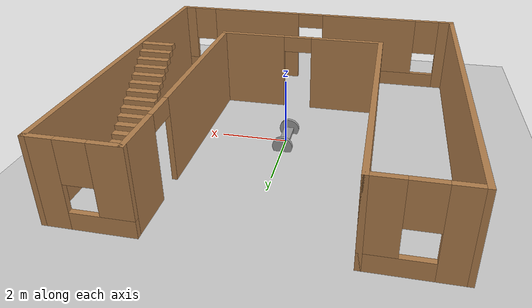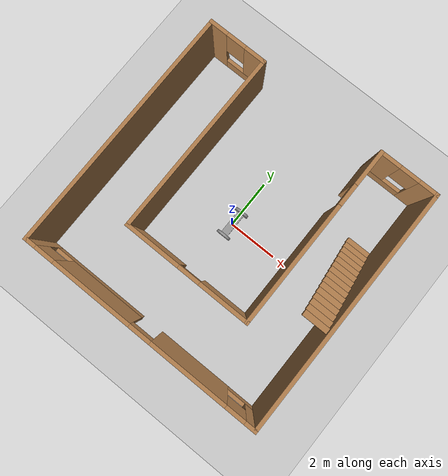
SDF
<?xml version="1.0"?>
<sdf version='1.6'>
  <world name='default'>

    <plugin name="hello" filename="libhello.so"/>

    <light name='sun' type='directional'>
      <cast_shadows>1</cast_shadows>
      <pose frame=''>0 0 10 0 -0 0</pose>
      <diffuse>0.8 0.8 0.8 1</diffuse>
      <specular>0.2 0.2 0.2 1</specular>
      <attenuation>
        <range>1000</range>
        <constant>0.9</constant>
        <linear>0.01</linear>
        <quadratic>0.001</quadratic>
      </attenuation>
      <direction>-0.5 0.1 -0.9</direction>
    </light>
    <model name='ground_plane'>
      <static>1</static>
      <link name='link'>
        <collision name='collision'>
          <geometry>
            <plane>
              <normal>0 0 1</normal>
              <size>100 100</size>
            </plane>
          </geometry>
          <surface>
            <friction>
              <ode>
                <mu>100</mu>
                <mu2>50</mu2>
              </ode>
              <torsional>
                <ode/>
              </torsional>
            </friction>
            <contact>
              <ode/>
            </contact>
            <bounce/>
          </surface>
          <max_contacts>10</max_contacts>
        </collision>
        <visual name='visual'>
          <cast_shadows>0</cast_shadows>
          <geometry>
            <plane>
              <normal>0 0 1</normal>
              <size>100 100</size>
            </plane>
          </geometry>
          <material>
            <script>
              <uri>file://media/materials/scripts/gazebo.material</uri>
              <name>Gazebo/Grey</name>
            </script>
          </material>
        </visual>
        <self_collide>0</self_collide>
        <enable_wind>0</enable_wind>
        <kinematic>0</kinematic>
      </link>
    </model>
    <gravity>0 0 -9.8</gravity>
    <magnetic_field>6e-06 2.3e-05 -4.2e-05</magnetic_field>
    <atmosphere type='adiabatic'/>
    <physics name='default_physics' default='0' type='ode'>
      <max_step_size>0.001</max_step_size>
      <real_time_factor>1</real_time_factor>
      <real_time_update_rate>1000</real_time_update_rate>
    </physics>
    <scene>
      <ambient>0.4 0.4 0.4 1</ambient>
      <background>0.7 0.7 0.7 1</background>
      <shadows>1</shadows>
    </scene>
    <wind/>
    <spherical_coordinates>
      <surface_model>EARTH_WGS84</surface_model>
      <latitude_deg>0</latitude_deg>
      <longitude_deg>0</longitude_deg>
      <elevation>0</elevation>
      <heading_deg>0</heading_deg>
    </spherical_coordinates>

    <include>
      <static>false</static>
      <uri>model://robot</uri>
      <pose> 0 0 0.15 0 0 0</pose>
    </include>

    <include>
      <uri>model://building</uri>
      <pose> 0 0 0 0 0 0</pose>
      <static>true</static>
    </include>

    <gui fullscreen='0'>
      <camera name='user_camera'>
        <pose frame=''>5.34079 1.64894 3.88586 0 0.503643 -3.07099</pose>
        <view_controller>orbit</view_controller>
        <projection_type>perspective</projection_type>
      </camera>
    </gui>
  </world>
</sdf>

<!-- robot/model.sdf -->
<sdf version='1.6'>
  <model name='robot'>
    <link name='link_0'>
      <inertial>
        <mass>1</mass>
        <inertia>
          <ixx>0.166667</ixx>
          <ixy>0</ixy>
          <ixz>0</ixz>
          <iyy>0.166667</iyy>
          <iyz>0</iyz>
          <izz>0.166667</izz>
        </inertia>
        <pose frame=''>0 0 0 0 -0 0</pose>
      </inertial>
      <pose frame=''>0 0 0 0 -0 0</pose>
      <gravity>1</gravity>
      <self_collide>0</self_collide>
      <kinematic>0</kinematic>
      <enable_wind>0</enable_wind>
      <visual name='visual'>
        <pose frame=''>0 0 0 0 -0 0</pose>
        <geometry>
          <box>
            <size>0.3 1 0.1</size>
          </box>
        </geometry>
        <material>
          <lighting>1</lighting>
          <script>
            <uri>file://media/materials/scripts/gazebo.material</uri>
            <name>Gazebo/Grey</name>
          </script>
          <shader type='pixel'>
            <normal_map>__default__</normal_map>
          </shader>
          <ambient>0.3 0.3 0.3 1</ambient>
          <diffuse>0.7 0.7 0.7 1</diffuse>
          <specular>0.01 0.01 0.01 1</specular>
          <emissive>0 0 0 1</emissive>
        </material>
        <transparency>0</transparency>
        <cast_shadows>1</cast_shadows>
      </visual>
      <collision name='collision'>
        <laser_retro>0</laser_retro>
        <max_contacts>10</max_contacts>
        <pose frame=''>0 0 0 0 -0 0</pose>
        <geometry>
          <box>
            <size>0.3 1 0.1</size>
          </box>
        </geometry>
        <surface>
          <friction>
            <ode>
              <mu>1</mu>
              <mu2>1</mu2>
              <fdir1>0 0 0</fdir1>
              <slip1>0</slip1>
              <slip2>0</slip2>
            </ode>
            <torsional>
              <coefficient>1</coefficient>
              <patch_radius>0</patch_radius>
              <surface_radius>0</surface_radius>
              <use_patch_radius>1</use_patch_radius>
              <ode>
                <slip>0</slip>
              </ode>
            </torsional>
          </friction>
          <bounce>
            <restitution_coefficient>0</restitution_coefficient>
            <threshold>1e+06</threshold>
          </bounce>
          <contact>
            <collide_without_contact>0</collide_without_contact>
            <collide_without_contact_bitmask>1</collide_without_contact_bitmask>
            <collide_bitmask>1</collide_bitmask>
            <ode>
              <soft_cfm>0</soft_cfm>
              <soft_erp>0.2</soft_erp>
              <kp>1e+13</kp>
              <kd>1</kd>
              <max_vel>0.01</max_vel>
              <min_depth>0</min_depth>
            </ode>
            <bullet>
              <split_impulse>1</split_impulse>
              <split_impulse_penetration_threshold>-0.01</split_impulse_penetration_threshold>
              <soft_cfm>0</soft_cfm>
              <soft_erp>0.2</soft_erp>
              <kp>1e+13</kp>
              <kd>1</kd>
            </bullet>
          </contact>
        </surface>
      </collision>
    </link>
    <link name='link_1'>
      <inertial>
        <mass>1</mass>
        <inertia>
          <ixx>0.145833</ixx>
          <ixy>0</ixy>
          <ixz>0</ixz>
          <iyy>0.145833</iyy>
          <iyz>0</iyz>
          <izz>0.125</izz>
        </inertia>
        <pose frame=''>0 0 0 0 -0 0</pose>
      </inertial>
      <pose frame=''>0 -0.550029 0 1.5707 -0 0</pose>
      <gravity>1</gravity>
      <self_collide>0</self_collide>
      <kinematic>0</kinematic>
      <enable_wind>0</enable_wind>
      <visual name='visual'>
        <pose frame=''>0 0 0 0 -0 0</pose>
        <geometry>
          <cylinder>
            <radius>0.3</radius>
            <length>0.1</length>
          </cylinder>
        </geometry>
        <material>
          <lighting>1</lighting>
          <script>
            <uri>file://media/materials/scripts/gazebo.material</uri>
            <name>Gazebo/Grey</name>
          </script>
          <shader type='pixel'>
            <normal_map>__default__</normal_map>
          </shader>
          <ambient>0.3 0.3 0.3 1</ambient>
          <diffuse>0.7 0.7 0.7 1</diffuse>
          <specular>0.01 0.01 0.01 1</specular>
          <emissive>0 0 0 1</emissive>
        </material>
        <transparency>0</transparency>
        <cast_shadows>1</cast_shadows>
      </visual>
      <collision name='collision'>
        <laser_retro>0</laser_retro>
        <max_contacts>10</max_contacts>
        <pose frame=''>0 0 0 0 -0 0</pose>
        <geometry>
          <cylinder>
            <radius>0.3</radius>
            <length>0.1</length>
          </cylinder>
        </geometry>
        <surface>
          <friction>
            <ode>
              <mu>1</mu>
              <mu2>1</mu2>
              <fdir1>0 0 0</fdir1>
              <slip1>0</slip1>
              <slip2>0</slip2>
            </ode>
            <torsional>
              <coefficient>1</coefficient>
              <patch_radius>0</patch_radius>
              <surface_radius>0</surface_radius>
              <use_patch_radius>1</use_patch_radius>
              <ode>
                <slip>0</slip>
              </ode>
            </torsional>
          </friction>
          <bounce>
            <restitution_coefficient>0</restitution_coefficient>
            <threshold>1e+06</threshold>
          </bounce>
          <contact>
            <collide_without_contact>0</collide_without_contact>
            <collide_without_contact_bitmask>1</collide_without_contact_bitmask>
            <collide_bitmask>1</collide_bitmask>
            <ode>
              <soft_cfm>0</soft_cfm>
              <soft_erp>0.2</soft_erp>
              <kp>1e+13</kp>
              <kd>1</kd>
              <max_vel>0.01</max_vel>
              <min_depth>0</min_depth>
            </ode>
            <bullet>
              <split_impulse>1</split_impulse>
              <split_impulse_penetration_threshold>-0.01</split_impulse_penetration_threshold>
              <soft_cfm>0</soft_cfm>
              <soft_erp>0.2</soft_erp>
              <kp>1e+13</kp>
              <kd>1</kd>
            </bullet>
          </contact>
        </surface>
      </collision>
    </link>
    <link name='link_1_clone'>
      <inertial>
        <mass>1</mass>
        <inertia>
          <ixx>0.145833</ixx>
          <ixy>0</ixy>
          <ixz>0</ixz>
          <iyy>0.145833</iyy>
          <iyz>0</iyz>
          <izz>0.125</izz>
        </inertia>
        <pose frame=''>0 0 0 0 -0 0</pose>
      </inertial>
      <pose frame=''>0 0.550029 0 1.5707 -0 0</pose>
      <gravity>1</gravity>
      <self_collide>0</self_collide>
      <kinematic>0</kinematic>
      <enable_wind>0</enable_wind>
      <visual name='visual'>
        <pose frame=''>0 0 0 0 -0 0</pose>
        <geometry>
          <cylinder>
            <radius>0.3</radius>
            <length>0.1</length>
          </cylinder>
        </geometry>
        <material>
          <lighting>1</lighting>
          <script>
            <uri>file://media/materials/scripts/gazebo.material</uri>
            <name>Gazebo/Grey</name>
          </script>
          <shader type='pixel'>
            <normal_map>__default__</normal_map>
          </shader>
          <ambient>0.3 0.3 0.3 1</ambient>
          <diffuse>0.7 0.7 0.7 1</diffuse>
          <specular>0.01 0.01 0.01 1</specular>
          <emissive>0 0 0 1</emissive>
        </material>
        <transparency>0</transparency>
        <cast_shadows>1</cast_shadows>
      </visual>
      <collision name='collision'>
        <laser_retro>0</laser_retro>
        <max_contacts>10</max_contacts>
        <pose frame=''>0 0 0 0 -0 0</pose>
        <geometry>
          <cylinder>
            <radius>0.3</radius>
            <length>0.1</length>
          </cylinder>
        </geometry>
        <surface>
          <friction>
            <ode>
              <mu>1</mu>
              <mu2>1</mu2>
              <fdir1>0 0 0</fdir1>
              <slip1>0</slip1>
              <slip2>0</slip2>
            </ode>
            <torsional>
              <coefficient>1</coefficient>
              <patch_radius>0</patch_radius>
              <surface_radius>0</surface_radius>
              <use_patch_radius>1</use_patch_radius>
              <ode>
                <slip>0</slip>
              </ode>
            </torsional>
          </friction>
          <bounce>
            <restitution_coefficient>0</restitution_coefficient>
            <threshold>1e+06</threshold>
          </bounce>
          <contact>
            <collide_without_contact>0</collide_without_contact>
            <collide_without_contact_bitmask>1</collide_without_contact_bitmask>
            <collide_bitmask>1</collide_bitmask>
            <ode>
              <soft_cfm>0</soft_cfm>
              <soft_erp>0.2</soft_erp>
              <kp>1e+13</kp>
              <kd>1</kd>
              <max_vel>0.01</max_vel>
              <min_depth>0</min_depth>
            </ode>
            <bullet>
              <split_impulse>1</split_impulse>
              <split_impulse_penetration_threshold>-0.01</split_impulse_penetration_threshold>
              <soft_cfm>0</soft_cfm>
              <soft_erp>0.2</soft_erp>
              <kp>1e+13</kp>
              <kd>1</kd>
            </bullet>
          </contact>
        </surface>
      </collision>
    </link>
    <joint name='link_0_JOINT_0' type='revolute'>
      <parent>link_0</parent>
      <child>link_1</child>
      <pose frame=''>0 0 0 0 -0 0</pose>
      <axis>
        <xyz>0 0 1</xyz>
        <use_parent_model_frame>0</use_parent_model_frame>
        <limit>
          <lower>-1.79769e+308</lower>
          <upper>1.79769e+308</upper>
          <effort>-1</effort>
          <velocity>-1</velocity>
        </limit>
        <dynamics>
          <spring_reference>0</spring_reference>
          <spring_stiffness>0</spring_stiffness>
          <damping>0</damping>
        </dynamics>
      </axis>
      <physics>
        <ode>
          <limit>
            <cfm>0</cfm>
            <erp>0.2</erp>
          </limit>
          <suspension>
            <cfm>0</cfm>
            <erp>0.2</erp>
          </suspension>
        </ode>
      </physics>
    </joint>
    <joint name='link_0_JOINT_1' type='revolute'>
      <parent>link_0</parent>
      <child>link_1_clone</child>
      <pose frame=''>0 0 0 0 -0 0</pose>
      <axis>
        <xyz>0 0 1</xyz>
        <use_parent_model_frame>0</use_parent_model_frame>
        <limit>
          <lower>-1.79769e+308</lower>
          <upper>1.79769e+308</upper>
          <effort>-1</effort>
          <velocity>-1</velocity>
        </limit>
        <dynamics>
          <spring_reference>0</spring_reference>
          <spring_stiffness>0</spring_stiffness>
          <damping>0</damping>
        </dynamics>
      </axis>
      <physics>
        <ode>
          <limit>
            <cfm>0</cfm>
            <erp>0.2</erp>
          </limit>
          <suspension>
            <cfm>0</cfm>
            <erp>0.2</erp>
          </suspension>
        </ode>
      </physics>
    </joint>
    <static>0</static>
    <allow_auto_disable>1</allow_auto_disable>
  </model>
</sdf>

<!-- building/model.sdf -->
<sdf version='1.6'>
  <model name='building'>
    <pose frame=''>-0.417172 1.40474 0 0 -0 0</pose>
    <link name='Stairs_0'>
      <visual name='Stairs_0_Visual_0'>
        <pose frame=''>4.31792 2.29229 0.083333 0 -0 0</pose>
        <geometry>
          <box>
            <size>1 0.233333 0.166667</size>
          </box>
        </geometry>
        <material>
          <script>
            <uri>file://media/materials/scripts/gazebo.material</uri>
            <name>Gazebo/Wood</name>
          </script>
          <ambient>1 1 1 1</ambient>
        </material>
        <meta>
          <layer>0</layer>
        </meta>
      </visual>
      <collision name='Stairs_0_Collision_0'>
        <geometry>
          <box>
            <size>1 0.233333 0.166667</size>
          </box>
        </geometry>
        <pose frame=''>4.31792 2.29229 0.083333 0 -0 0</pose>
      </collision>
      <visual name='Stairs_0_Visual_1'>
        <pose frame=''>4.31792 2.05896 0.25 0 -0 0</pose>
        <geometry>
          <box>
            <size>1 0.233333 0.166667</size>
          </box>
        </geometry>
        <material>
          <script>
            <uri>file://media/materials/scripts/gazebo.material</uri>
            <name>Gazebo/Wood</name>
          </script>
          <ambient>1 1 1 1</ambient>
        </material>
        <meta>
          <layer>0</layer>
        </meta>
      </visual>
      <collision name='Stairs_0_Collision_1'>
        <geometry>
          <box>
            <size>1 0.233333 0.166667</size>
          </box>
        </geometry>
        <pose frame=''>4.31792 2.05896 0.25 0 -0 0</pose>
      </collision>
      <visual name='Stairs_0_Visual_2'>
        <pose frame=''>4.31792 1.82563 0.416667 0 -0 0</pose>
        <geometry>
          <box>
            <size>1 0.233333 0.166667</size>
          </box>
        </geometry>
        <material>
          <script>
            <uri>file://media/materials/scripts/gazebo.material</uri>
            <name>Gazebo/Wood</name>
          </script>
          <ambient>1 1 1 1</ambient>
        </material>
        <meta>
          <layer>0</layer>
        </meta>
      </visual>
      <collision name='Stairs_0_Collision_2'>
        <geometry>
          <box>
            <size>1 0.233333 0.166667</size>
          </box>
        </geometry>
        <pose frame=''>4.31792 1.82563 0.416667 0 -0 0</pose>
      </collision>
      <visual name='Stairs_0_Visual_3'>
        <pose frame=''>4.31792 1.59229 0.583333 0 -0 0</pose>
        <geometry>
          <box>
            <size>1 0.233333 0.166667</size>
          </box>
        </geometry>
        <material>
          <script>
            <uri>file://media/materials/scripts/gazebo.material</uri>
            <name>Gazebo/Wood</name>
          </script>
          <ambient>1 1 1 1</ambient>
        </material>
        <meta>
          <layer>0</layer>
        </meta>
      </visual>
      <collision name='Stairs_0_Collision_3'>
        <geometry>
          <box>
            <size>1 0.233333 0.166667</size>
          </box>
        </geometry>
        <pose frame=''>4.31792 1.59229 0.583333 0 -0 0</pose>
      </collision>
      <visual name='Stairs_0_Visual_4'>
        <pose frame=''>4.31792 1.35896 0.75 0 -0 0</pose>
        <geometry>
          <box>
            <size>1 0.233333 0.166667</size>
          </box>
        </geometry>
        <material>
          <script>
            <uri>file://media/materials/scripts/gazebo.material</uri>
            <name>Gazebo/Wood</name>
          </script>
          <ambient>1 1 1 1</ambient>
        </material>
        <meta>
          <layer>0</layer>
        </meta>
      </visual>
      <collision name='Stairs_0_Collision_4'>
        <geometry>
          <box>
            <size>1 0.233333 0.166667</size>
          </box>
        </geometry>
        <pose frame=''>4.31792 1.35896 0.75 0 -0 0</pose>
      </collision>
      <visual name='Stairs_0_Visual_5'>
        <pose frame=''>4.31792 1.12563 0.916667 0 -0 0</pose>
        <geometry>
          <box>
            <size>1 0.233333 0.166667</size>
          </box>
        </geometry>
        <material>
          <script>
            <uri>file://media/materials/scripts/gazebo.material</uri>
            <name>Gazebo/Wood</name>
          </script>
          <ambient>1 1 1 1</ambient>
        </material>
        <meta>
          <layer>0</layer>
        </meta>
      </visual>
      <collision name='Stairs_0_Collision_5'>
        <geometry>
          <box>
            <size>1 0.233333 0.166667</size>
          </box>
        </geometry>
        <pose frame=''>4.31792 1.12563 0.916667 0 -0 0</pose>
      </collision>
      <visual name='Stairs_0_Visual_6'>
        <pose frame=''>4.31792 0.892293 1.08333 0 -0 0</pose>
        <geometry>
          <box>
            <size>1 0.233333 0.166667</size>
          </box>
        </geometry>
        <material>
          <script>
            <uri>file://media/materials/scripts/gazebo.material</uri>
            <name>Gazebo/Wood</name>
          </script>
          <ambient>1 1 1 1</ambient>
        </material>
        <meta>
          <layer>0</layer>
        </meta>
      </visual>
      <collision name='Stairs_0_Collision_6'>
        <geometry>
          <box>
            <size>1 0.233333 0.166667</size>
          </box>
        </geometry>
        <pose frame=''>4.31792 0.892293 1.08333 0 -0 0</pose>
      </collision>
      <visual name='Stairs_0_Visual_7'>
        <pose frame=''>4.31792 0.658959 1.25 0 -0 0</pose>
        <geometry>
          <box>
            <size>1 0.233333 0.166667</size>
          </box>
        </geometry>
        <material>
          <script>
            <uri>file://media/materials/scripts/gazebo.material</uri>
            <name>Gazebo/Wood</name>
          </script>
          <ambient>1 1 1 1</ambient>
        </material>
        <meta>
          <layer>0</layer>
        </meta>
      </visual>
      <collision name='Stairs_0_Collision_7'>
        <geometry>
          <box>
            <size>1 0.233333 0.166667</size>
          </box>
        </geometry>
        <pose frame=''>4.31792 0.658959 1.25 0 -0 0</pose>
      </collision>
      <visual name='Stairs_0_Visual_8'>
        <pose frame=''>4.31792 0.425626 1.41667 0 -0 0</pose>
        <geometry>
          <box>
            <size>1 0.233333 0.166667</size>
          </box>
        </geometry>
        <material>
          <script>
            <uri>file://media/materials/scripts/gazebo.material</uri>
            <name>Gazebo/Wood</name>
          </script>
          <ambient>1 1 1 1</ambient>
        </material>
        <meta>
          <layer>0</layer>
        </meta>
      </visual>
      <collision name='Stairs_0_Collision_8'>
        <geometry>
          <box>
            <size>1 0.233333 0.166667</size>
          </box>
        </geometry>
        <pose frame=''>4.31792 0.425626 1.41667 0 -0 0</pose>
      </collision>
      <visual name='Stairs_0_Visual_9'>
        <pose frame=''>4.31792 0.192293 1.58333 0 -0 0</pose>
        <geometry>
          <box>
            <size>1 0.233333 0.166667</size>
          </box>
        </geometry>
        <material>
          <script>
            <uri>file://media/materials/scripts/gazebo.material</uri>
            <name>Gazebo/Wood</name>
          </script>
          <ambient>1 1 1 1</ambient>
        </material>
        <meta>
          <layer>0</layer>
        </meta>
      </visual>
      <collision name='Stairs_0_Collision_9'>
        <geometry>
          <box>
            <size>1 0.233333 0.166667</size>
          </box>
        </geometry>
        <pose frame=''>4.31792 0.192293 1.58333 0 -0 0</pose>
      </collision>
      <visual name='Stairs_0_Visual_10'>
        <pose frame=''>4.31792 -0.041041 1.75 0 -0 0</pose>
        <geometry>
          <box>
            <size>1 0.233333 0.166667</size>
          </box>
        </geometry>
        <material>
          <script>
            <uri>file://media/materials/scripts/gazebo.material</uri>
            <name>Gazebo/Wood</name>
          </script>
          <ambient>1 1 1 1</ambient>
        </material>
        <meta>
          <layer>0</layer>
        </meta>
      </visual>
      <collision name='Stairs_0_Collision_10'>
        <geometry>
          <box>
            <size>1 0.233333 0.166667</size>
          </box>
        </geometry>
        <pose frame=''>4.31792 -0.041041 1.75 0 -0 0</pose>
      </collision>
      <visual name='Stairs_0_Visual_11'>
        <pose frame=''>4.31792 -0.274374 1.91667 0 -0 0</pose>
        <geometry>
          <box>
            <size>1 0.233333 0.166667</size>
          </box>
        </geometry>
        <material>
          <script>
            <uri>file://media/materials/scripts/gazebo.material</uri>
            <name>Gazebo/Wood</name>
          </script>
          <ambient>1 1 1 1</ambient>
        </material>
        <meta>
          <layer>0</layer>
        </meta>
      </visual>
      <collision name='Stairs_0_Collision_11'>
        <geometry>
          <box>
            <size>1 0.233333 0.166667</size>
          </box>
        </geometry>
        <pose frame=''>4.31792 -0.274374 1.91667 0 -0 0</pose>
      </collision>
      <visual name='Stairs_0_Visual_12'>
        <pose frame=''>4.31792 -0.507707 2.08333 0 -0 0</pose>
        <geometry>
          <box>
            <size>1 0.233333 0.166667</size>
          </box>
        </geometry>
        <material>
          <script>
            <uri>file://media/materials/scripts/gazebo.material</uri>
            <name>Gazebo/Wood</name>
          </script>
          <ambient>1 1 1 1</ambient>
        </material>
        <meta>
          <layer>0</layer>
        </meta>
      </visual>
      <collision name='Stairs_0_Collision_12'>
        <geometry>
          <box>
            <size>1 0.233333 0.166667</size>
          </box>
        </geometry>
        <pose frame=''>4.31792 -0.507707 2.08333 0 -0 0</pose>
      </collision>
      <visual name='Stairs_0_Visual_13'>
        <pose frame=''>4.31792 -0.741041 2.25 0 -0 0</pose>
        <geometry>
          <box>
            <size>1 0.233333 0.166667</size>
          </box>
        </geometry>
        <material>
          <script>
            <uri>file://media/materials/scripts/gazebo.material</uri>
            <name>Gazebo/Wood</name>
          </script>
          <ambient>1 1 1 1</ambient>
        </material>
        <meta>
          <layer>0</layer>
        </meta>
      </visual>
      <collision name='Stairs_0_Collision_13'>
        <geometry>
          <box>
            <size>1 0.233333 0.166667</size>
          </box>
        </geometry>
        <pose frame=''>4.31792 -0.741041 2.25 0 -0 0</pose>
      </collision>
      <visual name='Stairs_0_Visual_14'>
        <pose frame=''>4.31792 -0.974374 2.41667 0 -0 0</pose>
        <geometry>
          <box>
            <size>1 0.233333 0.166667</size>
          </box>
        </geometry>
        <material>
          <script>
            <uri>file://media/materials/scripts/gazebo.material</uri>
            <name>Gazebo/Wood</name>
          </script>
          <ambient>1 1 1 1</ambient>
        </material>
        <meta>
          <layer>0</layer>
        </meta>
      </visual>
      <collision name='Stairs_0_Collision_14'>
        <geometry>
          <box>
            <size>1 0.233333 0.166667</size>
          </box>
        </geometry>
        <pose frame=''>4.31792 -0.974374 2.41667 0 -0 0</pose>
      </collision>
    </link>
    <link name='Wall_11'>
      <collision name='Wall_11_Collision'>
        <geometry>
          <box>
            <size>10 0.15 2.5</size>
          </box>
        </geometry>
        <pose frame=''>0 0 1.25 0 -0 0</pose>
      </collision>
      <visual name='Wall_11_Visual'>
        <pose frame=''>0 0 1.25 0 -0 0</pose>
        <geometry>
          <box>
            <size>10 0.15 2.5</size>
          </box>
        </geometry>
        <material>
          <script>
            <uri>file://media/materials/scripts/gazebo.material</uri>
            <name>Gazebo/Wood</name>
          </script>
          <ambient>1 1 1 1</ambient>
        </material>
        <meta>
          <layer>0</layer>
        </meta>
      </visual>
      <pose frame=''>-4.925 0 0 0 -0 -1.5708</pose>
    </link>
    <link name='Wall_12'>
      <pose frame=''>0 -4.925 0 0 -0 0</pose>
      <visual name='Wall_12_Visual_0'>
        <pose frame=''>-4.74975 0 1.25 0 -0 0</pose>
        <geometry>
          <box>
            <size>0.500495 0.15 2.5</size>
          </box>
        </geometry>
        <material>
          <script>
            <uri>file://media/materials/scripts/gazebo.material</uri>
            <name>Gazebo/Wood</name>
          </script>
          <ambient>1 1 1 1</ambient>
        </material>
        <meta>
          <layer>0</layer>
        </meta>
      </visual>
      <collision name='Wall_12_Collision_0'>
        <geometry>
          <box>
            <size>0.500495 0.15 2.5</size>
          </box>
        </geometry>
        <pose frame=''>-4.74975 0 1.25 0 -0 0</pose>
      </collision>
      <visual name='Wall_12_Visual_1'>
        <pose frame=''>2.10412 0 1.25 0 -0 0</pose>
        <geometry>
          <box>
            <size>3.19015 0.15 2.5</size>
          </box>
        </geometry>
        <material>
          <script>
            <uri>file://media/materials/scripts/gazebo.material</uri>
            <name>Gazebo/Wood</name>
          </script>
          <ambient>1 1 1 1</ambient>
        </material>
        <meta>
          <layer>0</layer>
        </meta>
      </visual>
      <collision name='Wall_12_Collision_1'>
        <geometry>
          <box>
            <size>3.19015 0.15 2.5</size>
          </box>
        </geometry>
        <pose frame=''>2.10412 0 1.25 0 -0 0</pose>
      </collision>
      <visual name='Wall_12_Visual_2'>
        <pose frame=''>-2.44523 0 0.25 0 -0 0</pose>
        <geometry>
          <box>
            <size>4.10854 0.15 0.5</size>
          </box>
        </geometry>
        <material>
          <script>
            <uri>file://media/materials/scripts/gazebo.material</uri>
            <name>Gazebo/Wood</name>
          </script>
          <ambient>1 1 1 1</ambient>
        </material>
        <meta>
          <layer>0</layer>
        </meta>
      </visual>
      <collision name='Wall_12_Collision_2'>
        <geometry>
          <box>
            <size>4.10854 0.15 0.5</size>
          </box>
        </geometry>
        <pose frame=''>-2.44523 0 0.25 0 -0 0</pose>
      </collision>
      <visual name='Wall_12_Visual_3'>
        <pose frame=''>4.3496 0 0.25 0 -0 0</pose>
        <geometry>
          <box>
            <size>1.30081 0.15 0.5</size>
          </box>
        </geometry>
        <material>
          <script>
            <uri>file://media/materials/scripts/gazebo.material</uri>
            <name>Gazebo/Wood</name>
          </script>
          <ambient>1 1 1 1</ambient>
        </material>
        <meta>
          <layer>0</layer>
        </meta>
      </visual>
      <collision name='Wall_12_Collision_3'>
        <geometry>
          <box>
            <size>1.30081 0.15 0.5</size>
          </box>
        </geometry>
        <pose frame=''>4.3496 0 0.25 0 -0 0</pose>
      </collision>
      <visual name='Wall_12_Visual_4'>
        <pose frame=''>-2.04523 0 1.5 0 -0 0</pose>
        <geometry>
          <box>
            <size>3.30854 0.15 2</size>
          </box>
        </geometry>
        <material>
          <script>
            <uri>file://media/materials/scripts/gazebo.material</uri>
            <name>Gazebo/Wood</name>
          </script>
          <ambient>1 1 1 1</ambient>
        </material>
        <meta>
          <layer>0</layer>
        </meta>
      </visual>
      <collision name='Wall_12_Collision_4'>
        <geometry>
          <box>
            <size>3.30854 0.15 2</size>
          </box>
        </geometry>
        <pose frame=''>-2.04523 0 1.5 0 -0 0</pose>
      </collision>
      <visual name='Wall_12_Visual_5'>
        <pose frame=''>-2.04523 0 1.5 0 -0 0</pose>
        <geometry>
          <box>
            <size>3.30854 0.15 2</size>
          </box>
        </geometry>
        <material>
          <script>
            <uri>file://media/materials/scripts/gazebo.material</uri>
            <name>Gazebo/Wood</name>
          </script>
          <ambient>1 1 1 1</ambient>
        </material>
        <meta>
          <layer>0</layer>
        </meta>
      </visual>
      <collision name='Wall_12_Collision_5'>
        <geometry>
          <box>
            <size>3.30854 0.15 2</size>
          </box>
        </geometry>
        <pose frame=''>-2.04523 0 1.5 0 -0 0</pose>
      </collision>
      <visual name='Wall_12_Visual_6'>
        <pose frame=''>4.7496 0 1.5 0 -0 0</pose>
        <geometry>
          <box>
            <size>0.500808 0.15 2</size>
          </box>
        </geometry>
        <material>
          <script>
            <uri>file://media/materials/scripts/gazebo.material</uri>
            <name>Gazebo/Wood</name>
          </script>
          <ambient>1 1 1 1</ambient>
        </material>
        <meta>
          <layer>0</layer>
        </meta>
      </visual>
      <collision name='Wall_12_Collision_6'>
        <geometry>
          <box>
            <size>0.500808 0.15 2</size>
          </box>
        </geometry>
        <pose frame=''>4.7496 0 1.5 0 -0 0</pose>
      </collision>
      <visual name='Wall_12_Visual_7'>
        <pose frame=''>-4.0995 0 1.9 0 -0 0</pose>
        <geometry>
          <box>
            <size>0.8 0.15 1.2</size>
          </box>
        </geometry>
        <material>
          <script>
            <uri>file://media/materials/scripts/gazebo.material</uri>
            <name>Gazebo/Wood</name>
          </script>
          <ambient>1 1 1 1</ambient>
        </material>
        <meta>
          <layer>0</layer>
        </meta>
      </visual>
      <collision name='Wall_12_Collision_7'>
        <geometry>
          <box>
            <size>0.8 0.15 1.2</size>
          </box>
        </geometry>
        <pose frame=''>-4.0995 0 1.9 0 -0 0</pose>
      </collision>
      <visual name='Wall_12_Visual_8'>
        <pose frame=''>4.09919 0 1.9 0 -0 0</pose>
        <geometry>
          <box>
            <size>0.8 0.15 1.2</size>
          </box>
        </geometry>
        <material>
          <script>
            <uri>file://media/materials/scripts/gazebo.material</uri>
            <name>Gazebo/Wood</name>
          </script>
          <ambient>1 1 1 1</ambient>
        </material>
        <meta>
          <layer>0</layer>
        </meta>
      </visual>
      <collision name='Wall_12_Collision_8'>
        <geometry>
          <box>
            <size>0.8 0.15 1.2</size>
          </box>
        </geometry>
        <pose frame=''>4.09919 0 1.9 0 -0 0</pose>
      </collision>
      <visual name='Wall_12_Visual_9'>
        <pose frame=''>0.059039 0 2.25 0 -0 0</pose>
        <geometry>
          <box>
            <size>0.9 0.15 0.5</size>
          </box>
        </geometry>
        <material>
          <script>
            <uri>file://media/materials/scripts/gazebo.material</uri>
            <name>Gazebo/Wood</name>
          </script>
          <ambient>1 1 1 1</ambient>
        </material>
        <meta>
          <layer>0</layer>
        </meta>
      </visual>
      <collision name='Wall_12_Collision_9'>
        <geometry>
          <box>
            <size>0.9 0.15 0.5</size>
          </box>
        </geometry>
        <pose frame=''>0.059039 0 2.25 0 -0 0</pose>
      </collision>
      <visual name='Wall_12_Visual_10'>
        <pose frame=''>0.059039 0 2.25 0 -0 0</pose>
        <geometry>
          <box>
            <size>0.9 0.15 0.5</size>
          </box>
        </geometry>
        <material>
          <script>
            <uri>file://media/materials/scripts/gazebo.material</uri>
            <name>Gazebo/Wood</name>
          </script>
          <ambient>1 1 1 1</ambient>
        </material>
        <meta>
          <layer>0</layer>
        </meta>
      </visual>
      <collision name='Wall_12_Collision_10'>
        <geometry>
          <box>
            <size>0.9 0.15 0.5</size>
          </box>
        </geometry>
        <pose frame=''>0.059039 0 2.25 0 -0 0</pose>
      </collision>
    </link>
    <link name='Wall_13'>
      <collision name='Wall_13_Collision'>
        <geometry>
          <box>
            <size>10 0.15 2.5</size>
          </box>
        </geometry>
        <pose frame=''>0 0 1.25 0 -0 0</pose>
      </collision>
      <visual name='Wall_13_Visual'>
        <pose frame=''>0 0 1.25 0 -0 0</pose>
        <geometry>
          <box>
            <size>10 0.15 2.5</size>
          </box>
        </geometry>
        <material>
          <script>
            <uri>file://media/materials/scripts/gazebo.material</uri>
            <name>Gazebo/Wood</name>
          </script>
          <ambient>1 1 1 1</ambient>
        </material>
        <meta>
          <layer>0</layer>
        </meta>
      </visual>
      <pose frame=''>4.925 0 0 0 -0 1.5708</pose>
    </link>
    <link name='Wall_14'>
      <pose frame=''>3.75 4.925 0 0 -0 3.14159</pose>
      <visual name='Wall_14_Visual_0'>
        <pose frame=''>-0.846611 0 1.25 0 -0 0</pose>
        <geometry>
          <box>
            <size>0.806778 0.15 2.5</size>
          </box>
        </geometry>
        <material>
          <script>
            <uri>file://media/materials/scripts/gazebo.material</uri>
            <name>Gazebo/Wood</name>
          </script>
          <ambient>1 1 1 1</ambient>
        </material>
        <meta>
          <layer>0</layer>
        </meta>
      </visual>
      <collision name='Wall_14_Collision_0'>
        <geometry>
          <box>
            <size>0.806778 0.15 2.5</size>
          </box>
        </geometry>
        <pose frame=''>-0.846611 0 1.25 0 -0 0</pose>
      </collision>
      <visual name='Wall_14_Visual_1'>
        <pose frame=''>0.403389 0 0.25 0 -0 0</pose>
        <geometry>
          <box>
            <size>1.69322 0.15 0.5</size>
          </box>
        </geometry>
        <material>
          <script>
            <uri>file://media/materials/scripts/gazebo.material</uri>
            <name>Gazebo/Wood</name>
          </script>
          <ambient>1 1 1 1</ambient>
        </material>
        <meta>
          <layer>0</layer>
        </meta>
      </visual>
      <collision name='Wall_14_Collision_1'>
        <geometry>
          <box>
            <size>1.69322 0.15 0.5</size>
          </box>
        </geometry>
        <pose frame=''>0.403389 0 0.25 0 -0 0</pose>
      </collision>
      <visual name='Wall_14_Visual_2'>
        <pose frame=''>0.803389 0 1.5 0 -0 0</pose>
        <geometry>
          <box>
            <size>0.893222 0.15 2</size>
          </box>
        </geometry>
        <material>
          <script>
            <uri>file://media/materials/scripts/gazebo.material</uri>
            <name>Gazebo/Wood</name>
          </script>
          <ambient>1 1 1 1</ambient>
        </material>
        <meta>
          <layer>0</layer>
        </meta>
      </visual>
      <collision name='Wall_14_Collision_2'>
        <geometry>
          <box>
            <size>0.893222 0.15 2</size>
          </box>
        </geometry>
        <pose frame=''>0.803389 0 1.5 0 -0 0</pose>
      </collision>
      <visual name='Wall_14_Visual_3'>
        <pose frame=''>-0.043222 0 1.9 0 -0 0</pose>
        <geometry>
          <box>
            <size>0.8 0.15 1.2</size>
          </box>
        </geometry>
        <material>
          <script>
            <uri>file://media/materials/scripts/gazebo.material</uri>
            <name>Gazebo/Wood</name>
          </script>
          <ambient>1 1 1 1</ambient>
        </material>
        <meta>
          <layer>0</layer>
        </meta>
      </visual>
      <collision name='Wall_14_Collision_3'>
        <geometry>
          <box>
            <size>0.8 0.15 1.2</size>
          </box>
        </geometry>
        <pose frame=''>-0.043222 0 1.9 0 -0 0</pose>
      </collision>
    </link>
    <link name='Wall_16'>
      <pose frame=''>-3.75 4.925 0 0 -0 0</pose>
      <visual name='Wall_16_Visual_0'>
        <pose frame=''>-0.848732 0 1.25 0 -0 0</pose>
        <geometry>
          <box>
            <size>0.802535 0.15 2.5</size>
          </box>
        </geometry>
        <material>
          <script>
            <uri>file://media/materials/scripts/gazebo.material</uri>
            <name>Gazebo/Wood</name>
          </script>
          <ambient>1 1 1 1</ambient>
        </material>
        <meta>
          <layer>0</layer>
        </meta>
      </visual>
      <collision name='Wall_16_Collision_0'>
        <geometry>
          <box>
            <size>0.802535 0.15 2.5</size>
          </box>
        </geometry>
        <pose frame=''>-0.848732 0 1.25 0 -0 0</pose>
      </collision>
      <visual name='Wall_16_Visual_1'>
        <pose frame=''>0.401268 0 0.25 0 -0 0</pose>
        <geometry>
          <box>
            <size>1.69747 0.15 0.5</size>
          </box>
        </geometry>
        <material>
          <script>
            <uri>file://media/materials/scripts/gazebo.material</uri>
            <name>Gazebo/Wood</name>
          </script>
          <ambient>1 1 1 1</ambient>
        </material>
        <meta>
          <layer>0</layer>
        </meta>
      </visual>
      <collision name='Wall_16_Collision_1'>
        <geometry>
          <box>
            <size>1.69747 0.15 0.5</size>
          </box>
        </geometry>
        <pose frame=''>0.401268 0 0.25 0 -0 0</pose>
      </collision>
      <visual name='Wall_16_Visual_2'>
        <pose frame=''>0.801268 0 1.5 0 -0 0</pose>
        <geometry>
          <box>
            <size>0.897465 0.15 2</size>
          </box>
        </geometry>
        <material>
          <script>
            <uri>file://media/materials/scripts/gazebo.material</uri>
            <name>Gazebo/Wood</name>
          </script>
          <ambient>1 1 1 1</ambient>
        </material>
        <meta>
          <layer>0</layer>
        </meta>
      </visual>
      <collision name='Wall_16_Collision_2'>
        <geometry>
          <box>
            <size>0.897465 0.15 2</size>
          </box>
        </geometry>
        <pose frame=''>0.801268 0 1.5 0 -0 0</pose>
      </collision>
      <visual name='Wall_16_Visual_3'>
        <pose frame=''>-0.047465 0 1.9 0 -0 0</pose>
        <geometry>
          <box>
            <size>0.8 0.15 1.2</size>
          </box>
        </geometry>
        <material>
          <script>
            <uri>file://media/materials/scripts/gazebo.material</uri>
            <name>Gazebo/Wood</name>
          </script>
          <ambient>1 1 1 1</ambient>
        </material>
        <meta>
          <layer>0</layer>
        </meta>
      </visual>
      <collision name='Wall_16_Collision_3'>
        <geometry>
          <box>
            <size>0.8 0.15 1.2</size>
          </box>
        </geometry>
        <pose frame=''>-0.047465 0 1.9 0 -0 0</pose>
      </collision>
    </link>
    <link name='Wall_17'>
      <collision name='Wall_17_Collision'>
        <geometry>
          <box>
            <size>7.5 0.15 2.5</size>
          </box>
        </geometry>
        <pose frame=''>0 0 1.25 0 -0 0</pose>
      </collision>
      <visual name='Wall_17_Visual'>
        <pose frame=''>0 0 1.25 0 -0 0</pose>
        <geometry>
          <box>
            <size>7.5 0.15 2.5</size>
          </box>
        </geometry>
        <material>
          <script>
            <uri>file://media/materials/scripts/gazebo.material</uri>
            <name>Gazebo/Wood</name>
          </script>
          <ambient>1 1 1 1</ambient>
        </material>
        <meta>
          <layer>0</layer>
        </meta>
      </visual>
      <pose frame=''>-2.575 1.25 0 0 -0 -1.5708</pose>
    </link>
    <link name='Wall_20'>
      <pose frame=''>2.575 1.25 0 0 -0 -1.5708</pose>
      <visual name='Wall_20_Visual_0'>
        <pose frame=''>-2.9938 0 1.25 0 -0 0</pose>
        <geometry>
          <box>
            <size>1.51239 0.15 2.5</size>
          </box>
        </geometry>
        <material>
          <script>
            <uri>file://media/materials/scripts/gazebo.material</uri>
            <name>Gazebo/Wood</name>
          </script>
          <ambient>1 1 1 1</ambient>
        </material>
        <meta>
          <layer>0</layer>
        </meta>
      </visual>
      <collision name='Wall_20_Collision_0'>
        <geometry>
          <box>
            <size>1.51239 0.15 2.5</size>
          </box>
        </geometry>
        <pose frame=''>-2.9938 0 1.25 0 -0 0</pose>
      </collision>
      <visual name='Wall_20_Visual_1'>
        <pose frame=''>1.2062 0 1.25 0 -0 0</pose>
        <geometry>
          <box>
            <size>5.08761 0.15 2.5</size>
          </box>
        </geometry>
        <material>
          <script>
            <uri>file://media/materials/scripts/gazebo.material</uri>
            <name>Gazebo/Wood</name>
          </script>
          <ambient>1 1 1 1</ambient>
        </material>
        <meta>
          <layer>0</layer>
        </meta>
      </visual>
      <collision name='Wall_20_Collision_1'>
        <geometry>
          <box>
            <size>5.08761 0.15 2.5</size>
          </box>
        </geometry>
        <pose frame=''>1.2062 0 1.25 0 -0 0</pose>
      </collision>
      <visual name='Wall_20_Visual_2'>
        <pose frame=''>-1.78761 0 2.25 0 -0 0</pose>
        <geometry>
          <box>
            <size>0.9 0.15 0.5</size>
          </box>
        </geometry>
        <material>
          <script>
            <uri>file://media/materials/scripts/gazebo.material</uri>
            <name>Gazebo/Wood</name>
          </script>
          <ambient>1 1 1 1</ambient>
        </material>
        <meta>
          <layer>0</layer>
        </meta>
      </visual>
      <collision name='Wall_20_Collision_2'>
        <geometry>
          <box>
            <size>0.9 0.15 0.5</size>
          </box>
        </geometry>
        <pose frame=''>-1.78761 0 2.25 0 -0 0</pose>
      </collision>
    </link>
    <link name='Wall_21'>
      <pose frame=''>0 -2.425 0 0 -0 3.14159</pose>
      <visual name='Wall_21_Visual_0'>
        <pose frame=''>-1.5945 0 1.25 0 -0 0</pose>
        <geometry>
          <box>
            <size>2.111 0.15 2.5</size>
          </box>
        </geometry>
        <material>
          <script>
            <uri>file://media/materials/scripts/gazebo.material</uri>
            <name>Gazebo/Wood</name>
          </script>
          <ambient>1 1 1 1</ambient>
        </material>
        <meta>
          <layer>0</layer>
        </meta>
      </visual>
      <collision name='Wall_21_Collision_0'>
        <geometry>
          <box>
            <size>2.111 0.15 2.5</size>
          </box>
        </geometry>
        <pose frame=''>-1.5945 0 1.25 0 -0 0</pose>
      </collision>
      <visual name='Wall_21_Visual_1'>
        <pose frame=''>1.5055 0 1.25 0 -0 0</pose>
        <geometry>
          <box>
            <size>2.289 0.15 2.5</size>
          </box>
        </geometry>
        <material>
          <script>
            <uri>file://media/materials/scripts/gazebo.material</uri>
            <name>Gazebo/Wood</name>
          </script>
          <ambient>1 1 1 1</ambient>
        </material>
        <meta>
          <layer>0</layer>
        </meta>
      </visual>
      <collision name='Wall_21_Collision_1'>
        <geometry>
          <box>
            <size>2.289 0.15 2.5</size>
          </box>
        </geometry>
        <pose frame=''>1.5055 0 1.25 0 -0 0</pose>
      </collision>
      <visual name='Wall_21_Visual_2'>
        <pose frame=''>-0.089 0 2.25 0 -0 0</pose>
        <geometry>
          <box>
            <size>0.9 0.15 0.5</size>
          </box>
        </geometry>
        <material>
          <script>
            <uri>file://media/materials/scripts/gazebo.material</uri>
            <name>Gazebo/Wood</name>
          </script>
          <ambient>1 1 1 1</ambient>
        </material>
        <meta>
          <layer>0</layer>
        </meta>
      </visual>
      <collision name='Wall_21_Collision_2'>
        <geometry>
          <box>
            <size>0.9 0.15 0.5</size>
          </box>
        </geometry>
        <pose frame=''>-0.089 0 2.25 0 -0 0</pose>
      </collision>
    </link>
    <static>1</static>
  </model>
</sdf>
